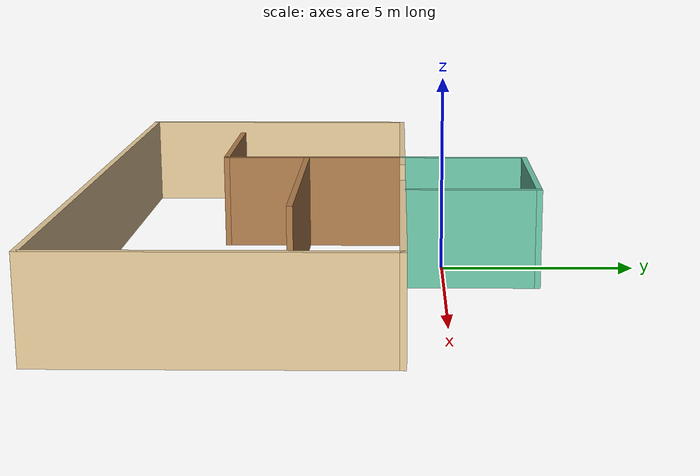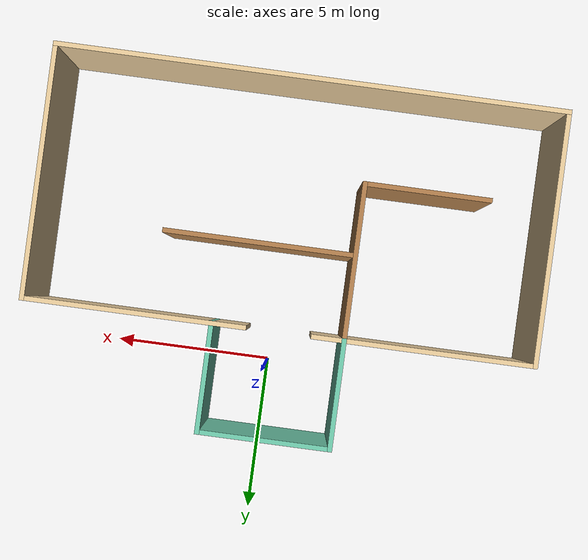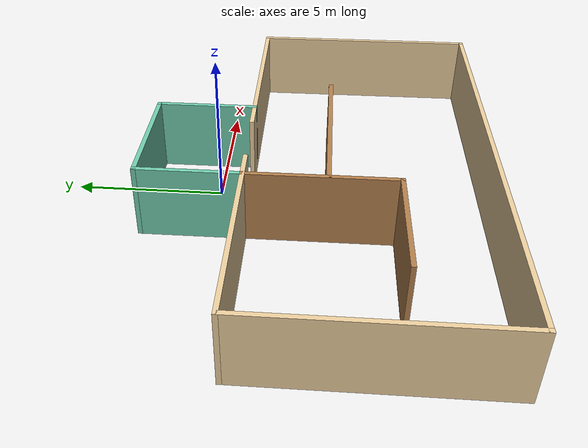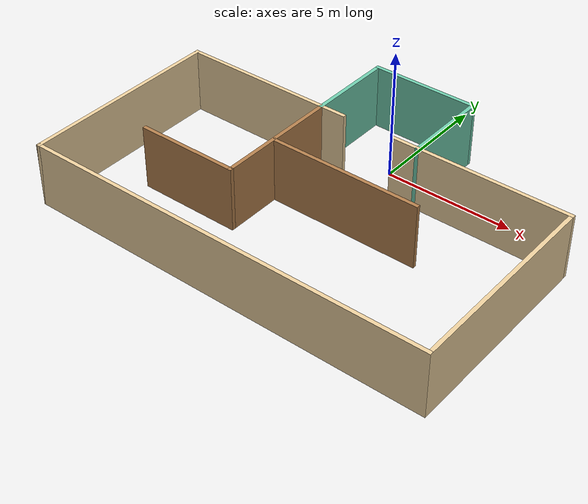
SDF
<?xml version='1.0'?>
<sdf version='1.6'>
  <model name='sample_world'>
    <pose frame=''>-0.293153 -3.27129 0 0 -0 0</pose>
    <link name='Wall_0'>
      <collision name='Wall_0_Collision'>
        <geometry>
          <box>
            <size>16 0.15 2.5</size>
          </box>
        </geometry>
        <pose frame=''>0 0 1.25 0 -0 0</pose>
      </collision>
      <visual name='Wall_0_Visual'>
        <pose frame=''>0 0 1.25 0 -0 0</pose>
        <geometry>
          <box>
            <size>16 0.15 2.5</size>
          </box>
        </geometry>
        <material>
          <script>
            <uri>file://media/materials/scripts/gazebo.material</uri>
            <name>Gazebo/Grey</name>
          </script>
          <ambient>0.921569 0.807843 0.615686 1</ambient>
        </material>
        <meta>
          <layer>0</layer>
        </meta>
      </visual>
      <pose frame=''>0 -5.6 0 0 -0 0</pose>
    </link>
    <link name='Wall_1'>
      <collision name='Wall_1_Collision'>
        <geometry>
          <box>
            <size>8 0.15 2.5</size>
          </box>
        </geometry>
        <pose frame=''>0 0 1.25 0 -0 0</pose>
      </collision>
      <visual name='Wall_1_Visual'>
        <pose frame=''>0 0 1.25 0 -0 0</pose>
        <geometry>
          <box>
            <size>8 0.15 2.5</size>
          </box>
        </geometry>
        <material>
          <script>
            <uri>file://media/materials/scripts/gazebo.material</uri>
            <name>Gazebo/Grey</name>
          </script>
          <ambient>0.921569 0.807843 0.615686 1</ambient>
        </material>
        <meta>
          <layer>0</layer>
        </meta>
      </visual>
      <pose frame=''>7.925 -1.675 0 0 -0 1.5708</pose>
    </link>
    <link name='Wall_11'>
      <collision name='Wall_11_Collision'>
        <geometry>
          <box>
            <size>3.5 0.15 2.5</size>
          </box>
        </geometry>
        <pose frame=''>0 0 1.25 0 -0 0</pose>
      </collision>
      <visual name='Wall_11_Visual'>
        <pose frame=''>0 0 1.25 0 -0 0</pose>
        <geometry>
          <box>
            <size>3.5 0.15 2.5</size>
          </box>
        </geometry>
        <material>
          <script>
            <uri>file://media/materials/scripts/gazebo.material</uri>
            <name>Gazebo/Grey</name>
          </script>
          <ambient>0.435294 0.796078 0.67451 1</ambient>
        </material>
        <meta>
          <layer>0</layer>
        </meta>
      </visual>
      <pose frame=''>-2.025 3.925 0 0 -0 -1.5708</pose>
    </link>
    <link name='Wall_13'>
      <collision name='Wall_13_Collision'>
        <geometry>
          <box>
            <size>7 0.15 2.5</size>
          </box>
        </geometry>
        <pose frame=''>0 0 1.25 0 -0 0</pose>
      </collision>
      <visual name='Wall_13_Visual'>
        <pose frame=''>0 0 1.25 0 -0 0</pose>
        <geometry>
          <box>
            <size>7 0.15 2.5</size>
          </box>
        </geometry>
        <material>
          <script>
            <uri>file://media/materials/scripts/gazebo.material</uri>
            <name>Gazebo/Grey</name>
          </script>
          <ambient>0.921569 0.807843 0.615686 1</ambient>
        </material>
        <meta>
          <layer>0</layer>
        </meta>
      </visual>
      <pose frame=''>4.5 2.25 0 0 -0 3.14159</pose>
    </link>
    <link name='Wall_15'>
      <collision name='Wall_15_Collision'>
        <geometry>
          <box>
            <size>5 0.15 2.5</size>
          </box>
        </geometry>
        <pose frame=''>0 0 1.25 0 -0 0</pose>
      </collision>
      <visual name='Wall_15_Visual'>
        <pose frame=''>0 0 1.25 0 -0 0</pose>
        <geometry>
          <box>
            <size>5 0.15 2.5</size>
          </box>
        </geometry>
        <material>
          <script>
            <uri>file://media/materials/scripts/gazebo.material</uri>
            <name>Gazebo/Wood</name>
          </script>
          <ambient>1 1 1 1</ambient>
        </material>
        <meta>
          <layer>0</layer>
        </meta>
      </visual>
      <pose frame=''>-2.025 -0.175 0 0 -0 -1.5708</pose>
    </link>
    <link name='Wall_16'>
      <collision name='Wall_16_Collision'>
        <geometry>
          <box>
            <size>4 0.15 2.5</size>
          </box>
        </geometry>
        <pose frame=''>0 0 1.25 0 -0 0</pose>
      </collision>
      <visual name='Wall_16_Visual'>
        <pose frame=''>0 0 1.25 0 -0 0</pose>
        <geometry>
          <box>
            <size>4 0.15 2.5</size>
          </box>
        </geometry>
        <material>
          <script>
            <uri>file://media/materials/scripts/gazebo.material</uri>
            <name>Gazebo/Wood</name>
          </script>
          <ambient>1 1 1 1</ambient>
        </material>
        <meta>
          <layer>0</layer>
        </meta>
      </visual>
      <pose frame=''>-3.95 -2.6 0 0 -0 3.14159</pose>
    </link>
    <link name='Wall_19'>
      <collision name='Wall_19_Collision'>
        <geometry>
          <box>
            <size>6 0.15 2.5</size>
          </box>
        </geometry>
        <pose frame=''>0 0 1.25 0 -0 0</pose>
      </collision>
      <visual name='Wall_19_Visual'>
        <pose frame=''>0 0 1.25 0 -0 0</pose>
        <geometry>
          <box>
            <size>6 0.15 2.5</size>
          </box>
        </geometry>
        <material>
          <script>
            <uri>file://media/materials/scripts/gazebo.material</uri>
            <name>Gazebo/Wood</name>
          </script>
          <ambient>1 1 1 1</ambient>
        </material>
        <meta>
          <layer>0</layer>
        </meta>
      </visual>
      <pose frame=''>0.931413 -0.383398 0 0 -0 0</pose>
    </link>
    <link name='Wall_3'>
      <collision name='Wall_3_Collision'>
        <geometry>
          <box>
            <size>8 0.15 2.5</size>
          </box>
        </geometry>
        <pose frame=''>0 0 1.25 0 -0 0</pose>
      </collision>
      <visual name='Wall_3_Visual'>
        <pose frame=''>0 0 1.25 0 -0 0</pose>
        <geometry>
          <box>
            <size>8 0.15 2.5</size>
          </box>
        </geometry>
        <material>
          <script>
            <uri>file://media/materials/scripts/gazebo.material</uri>
            <name>Gazebo/Grey</name>
          </script>
          <ambient>0.921569 0.807843 0.615686 1</ambient>
        </material>
        <meta>
          <layer>0</layer>
        </meta>
      </visual>
      <pose frame=''>-7.925 -1.675 0 0 -0 -1.5708</pose>
    </link>
    <link name='Wall_5'>
      <collision name='Wall_5_Collision'>
        <geometry>
          <box>
            <size>7 0.15 2.5</size>
          </box>
        </geometry>
        <pose frame=''>0 0 1.25 0 -0 0</pose>
      </collision>
      <visual name='Wall_5_Visual'>
        <pose frame=''>0 0 1.25 0 -0 0</pose>
        <geometry>
          <box>
            <size>7 0.15 2.5</size>
          </box>
        </geometry>
        <material>
          <script>
            <uri>file://media/materials/scripts/gazebo.material</uri>
            <name>Gazebo/Grey</name>
          </script>
          <ambient>0.921569 0.807843 0.615686 1</ambient>
        </material>
        <meta>
          <layer>0</layer>
        </meta>
      </visual>
      <pose frame=''>-4.5 2.25 0 0 -0 0</pose>
    </link>
    <link name='Wall_8'>
      <collision name='Wall_8_Collision'>
        <geometry>
          <box>
            <size>3.5 0.15 2.5</size>
          </box>
        </geometry>
        <pose frame=''>0 0 1.25 0 -0 0</pose>
      </collision>
      <visual name='Wall_8_Visual'>
        <pose frame=''>0 0 1.25 0 -0 0</pose>
        <geometry>
          <box>
            <size>3.5 0.15 2.5</size>
          </box>
        </geometry>
        <material>
          <script>
            <uri>file://media/materials/scripts/gazebo.material</uri>
            <name>Gazebo/Grey</name>
          </script>
          <ambient>0.435294 0.796078 0.67451 1</ambient>
        </material>
        <meta>
          <layer>0</layer>
        </meta>
      </visual>
      <pose frame=''>2.075 3.925 0 0 -0 1.5708</pose>
    </link>
    <link name='Wall_9'>
      <collision name='Wall_9_Collision'>
        <geometry>
          <box>
            <size>4.25 0.15 2.5</size>
          </box>
        </geometry>
        <pose frame=''>0 0 1.25 0 -0 0</pose>
      </collision>
      <visual name='Wall_9_Visual'>
        <pose frame=''>0 0 1.25 0 -0 0</pose>
        <geometry>
          <box>
            <size>4.25 0.15 2.5</size>
          </box>
        </geometry>
        <material>
          <script>
            <uri>file://media/materials/scripts/gazebo.material</uri>
            <name>Gazebo/Grey</name>
          </script>
          <ambient>0.435294 0.796078 0.67451 1</ambient>
        </material>
        <meta>
          <layer>0</layer>
        </meta>
      </visual>
      <pose frame=''>0.025 5.6 0 0 -0 3.14159</pose>
    </link>
    <static>1</static>
  </model>
</sdf>
